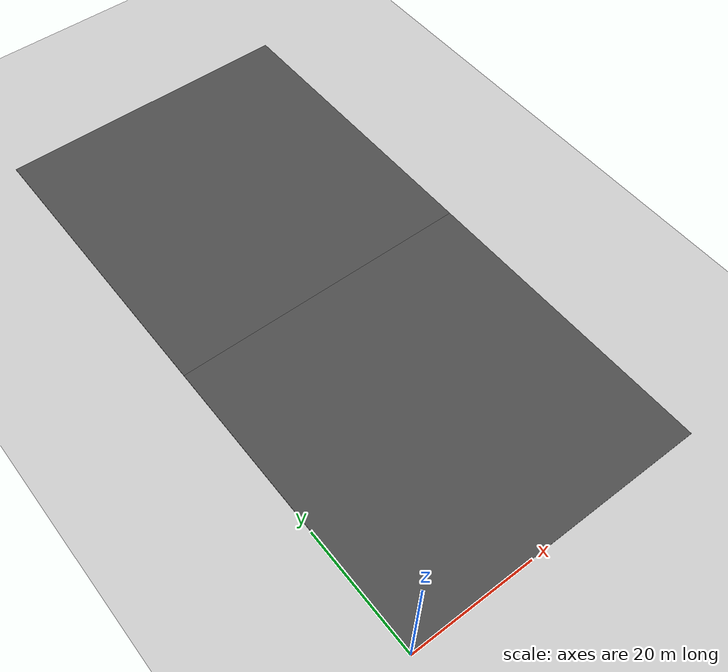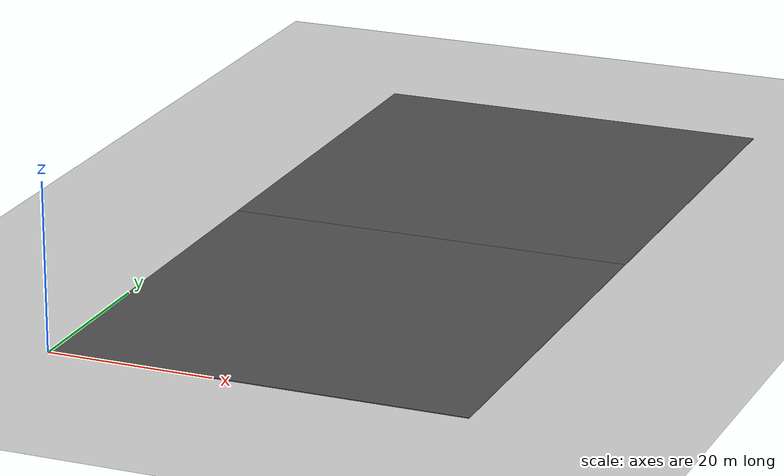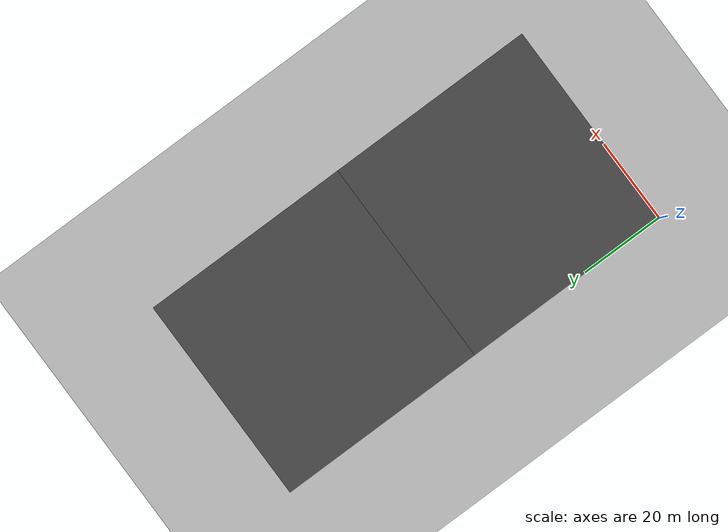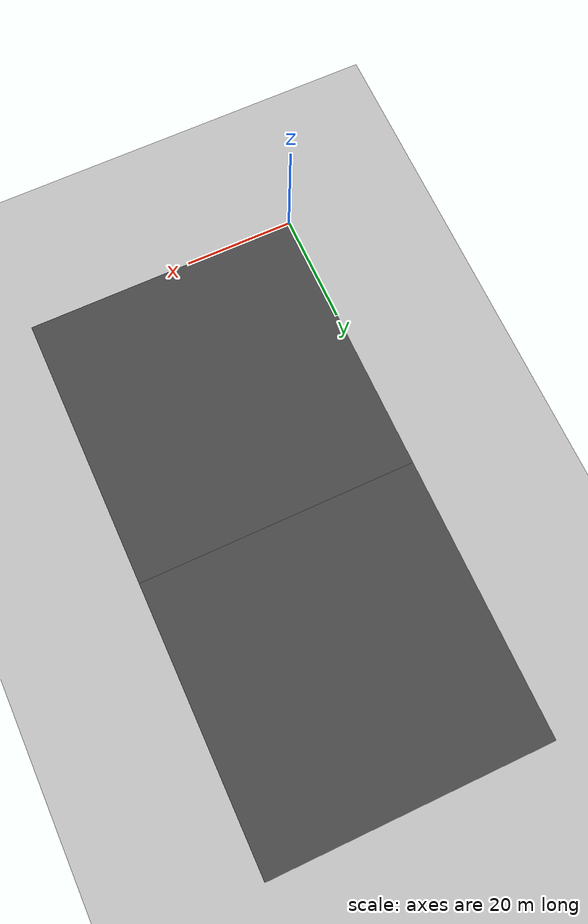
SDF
<sdf version="1.7">
 <world name="default">
  <model name="ground_plane">
   <static>1</static>
   <link name="link">
    <collision name="collision">
     <geometry><plane><normal>0 0 1</normal><size>100 100</size></plane></geometry>
     <surface>
      <contact><collide_bitmask>65535</collide_bitmask></contact>
      <friction><ode><mu>100</mu><mu2>50</mu2></ode></friction>
     </surface>
    </collision>
    <visual name="visual">
     <cast_shadows>0</cast_shadows>
     <geometry><plane><normal>0 0 1</normal><size>100 100</size></plane></geometry>
     <material>
      <script><uri>file://media/materials/scripts/gazebo.material</uri><name>Gazebo/Grey</name></script>
     </material>
    </visual>
   </link>
  </model>
  <model name="asphalt_plane">
   <link name="link">
    <inertial>
     <mass>1</mass>
     <inertia><ixx>1</ixx><ixy>0</ixy><ixz>0</ixz><iyy>1</iyy><iyz>0</iyz><izz>1</izz></inertia>
    </inertial>
    <visual name="visual">
     <cast_shadows>0</cast_shadows>
     <geometry><box><size>50 50 0.1</size></box></geometry>
     <material>
      <script>
       <uri>model://asphalt_plane/materials/scripts</uri>
       <uri>model://asphalt_plane/materials/textures</uri>
       <name>vrc/asphalt</name>
      </script>
      <shader type="pixel"><normal_map>__default__</normal_map></shader>
      <ambient>0.5 0.5 0.5 1</ambient>
      <diffuse>0.5 0.5 0.5 1</diffuse>
      <specular>0.2 0.2 0.2 1</specular>
      <emissive>0 0 0 1</emissive>
     </material>
    </visual>
    <collision name="collision">
     <geometry><box><size>50 50 0.1</size></box></geometry>
     <surface>
      <friction>
       <ode><mu>1</mu><mu2>1</mu2><fdir1>0 0 0</fdir1><slip1>0</slip1><slip2>0</slip2></ode>
       <torsional>
        <coefficient>1</coefficient>
        <patch_radius>0</patch_radius>
        <surface_radius>0</surface_radius>
        <use_patch_radius>1</use_patch_radius>
        <ode><slip>0</slip></ode>
       </torsional>
      </friction>
      <bounce><restitution_coefficient>0</restitution_coefficient><threshold>1e+06</threshold></bounce>
      <contact>
       <collide_without_contact>0</collide_without_contact>
       <collide_without_contact_bitmask>1</collide_without_contact_bitmask>
       <collide_bitmask>1</collide_bitmask>
       <ode>
        <soft_cfm>0</soft_cfm>
        <soft_erp>0.2</soft_erp>
        <kp>1e+13</kp>
        <kd>1</kd>
        <max_vel>0.01</max_vel>
        <min_depth>0</min_depth>
       </ode>
       <bullet>
        <split_impulse>1</split_impulse>
        <split_impulse_penetration_threshold>-0.01</split_impulse_penetration_threshold>
        <soft_cfm>0</soft_cfm>
        <soft_erp>0.2</soft_erp>
        <kp>1e+13</kp>
        <kd>1</kd>
       </bullet>
      </contact>
     </surface>
    </collision>
   </link>
   <static>1</static>
   <pose>25 25 0 0 -0 0</pose>
  </model>
  <model name="asphalt_plane_6">
   <link name="link">
    <inertial>
     <mass>1</mass>
     <inertia><ixx>1</ixx><ixy>0</ixy><ixz>0</ixz><iyy>1</iyy><iyz>0</iyz><izz>1</izz></inertia>
    </inertial>
    <visual name="visual">
     <cast_shadows>0</cast_shadows>
     <geometry><box><size>50 50 0.1</size></box></geometry>
     <material>
      <script>
       <uri>model://asphalt_plane/materials/scripts</uri>
       <uri>model://asphalt_plane/materials/textures</uri>
       <name>vrc/asphalt</name>
      </script>
      <shader type="pixel"><normal_map>__default__</normal_map></shader>
      <ambient>0.5 0.5 0.5 1</ambient>
      <diffuse>0.5 0.5 0.5 1</diffuse>
      <specular>0.2 0.2 0.2 1</specular>
      <emissive>0 0 0 1</emissive>
     </material>
    </visual>
    <collision name="collision">
     <geometry><box><size>50 50 0.1</size></box></geometry>
     <surface>
      <friction>
       <ode><mu>1</mu><mu2>1</mu2><fdir1>0 0 0</fdir1><slip1>0</slip1><slip2>0</slip2></ode>
       <torsional>
        <coefficient>1</coefficient>
        <patch_radius>0</patch_radius>
        <surface_radius>0</surface_radius>
        <use_patch_radius>1</use_patch_radius>
        <ode><slip>0</slip></ode>
       </torsional>
      </friction>
      <bounce><restitution_coefficient>0</restitution_coefficient><threshold>1e+06</threshold></bounce>
      <contact>
       <collide_without_contact>0</collide_without_contact>
       <collide_without_contact_bitmask>1</collide_without_contact_bitmask>
       <collide_bitmask>1</collide_bitmask>
       <ode>
        <soft_cfm>0</soft_cfm>
        <soft_erp>0.2</soft_erp>
        <kp>1e+13</kp>
        <kd>1</kd>
        <max_vel>0.01</max_vel>
        <min_depth>0</min_depth>
       </ode>
       <bullet>
        <split_impulse>1</split_impulse>
        <split_impulse_penetration_threshold>-0.01</split_impulse_penetration_threshold>
        <soft_cfm>0</soft_cfm>
        <soft_erp>0.2</soft_erp>
        <kp>1e+13</kp>
        <kd>1</kd>
       </bullet>
      </contact>
     </surface>
    </collision>
   </link>
   <static>1</static>
   <pose>25 75 0 0 -0 0</pose>
  </model>
 </world>
</sdf>
